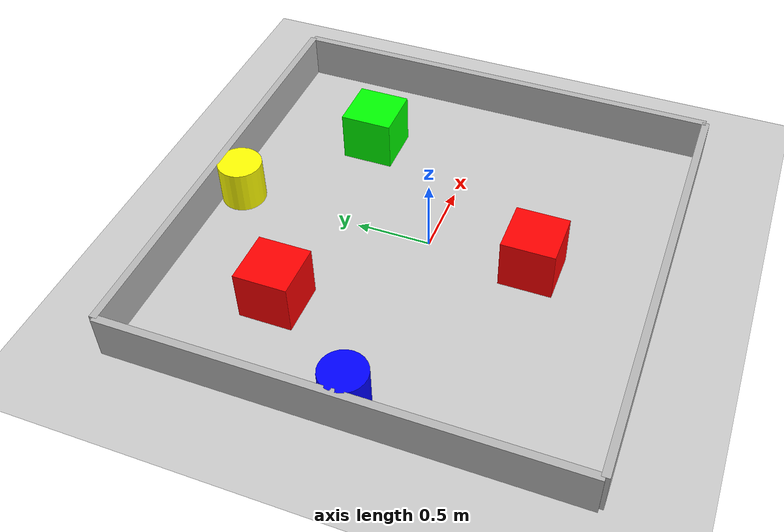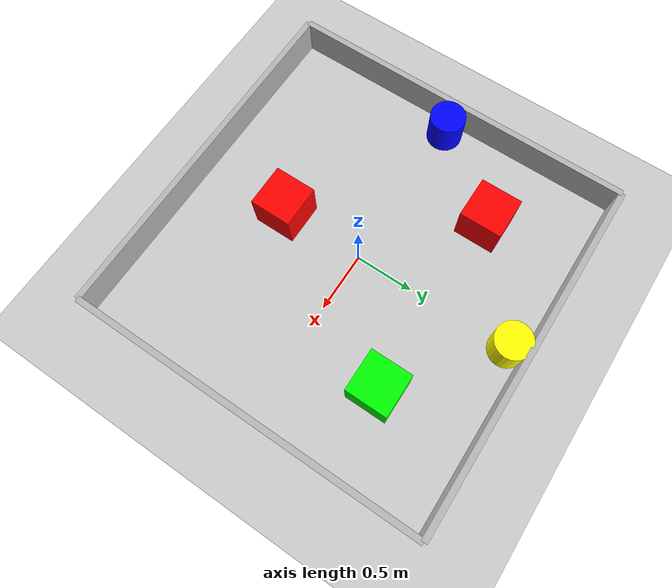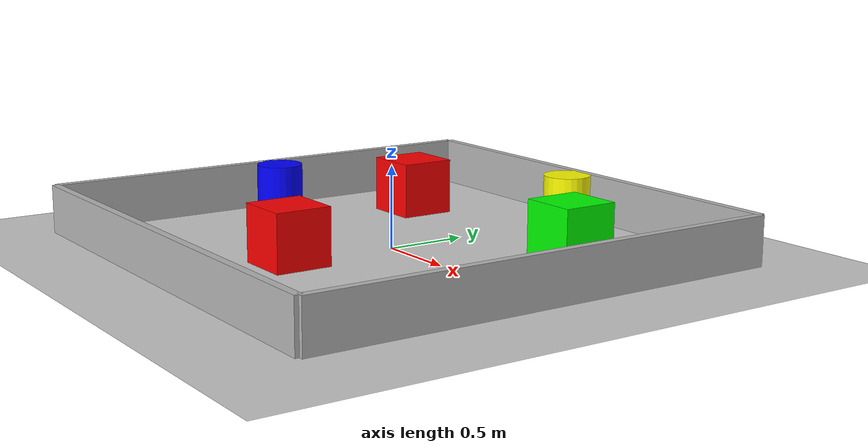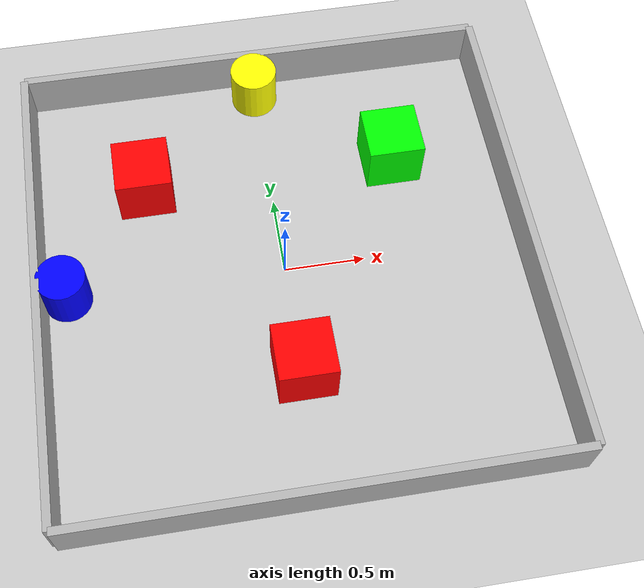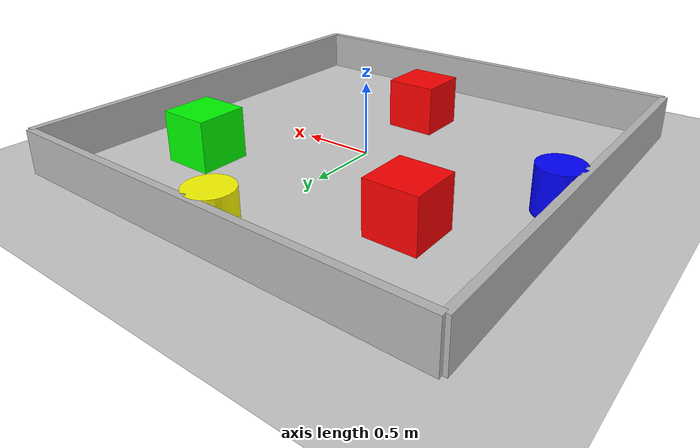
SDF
<?xml version="1.0" ?>
<sdf version="1.9">

  <world name="maze_world_2">

    <!-- buat lantai-->
    <physics name="1ms" type="ode">
      <max_step_size>0.001</max_step_size>
      <real_time_factor>1.0</real_time_factor>
    </physics>
    <plugin
      filename="gz-sim-physics-system"
      name="gz::sim::systems::Physics">
    </plugin>
    <plugin
      filename="gz-sim-user-commands-system"
      name="gz::sim::systems::UserCommands">
    </plugin>
    <plugin
      filename="gz-sim-scene-broadcaster-system"
      name="gz::sim::systems::SceneBroadcaster">
    </plugin>
    <plugin
      filename="gz-sim-contact-system"
      name="gz::sim::systems::Contact">
    </plugin>

    <light type="directional" name="sun">
      <cast_shadows>true</cast_shadows>
      <pose>0 0 10 0 0 0</pose>
      <diffuse>0.8 0.8 0.8 1</diffuse>
      <specular>0.2 0.2 0.2 1</specular>
      <attenuation>
        <range>1000</range>
        <constant>0.9</constant>
        <linear>0.01</linear>
        <quadratic>0.001</quadratic>
      </attenuation>
      <direction>-0.5 0.1 -0.9</direction>
    </light>

    <model name="ground_plane">
      <static>true</static>
      <link name="link">
        <collision name="collision">
          <geometry>
            <plane>
              <normal>0 0 1</normal>
              <size>100 100</size>
            </plane>
          </geometry>
        </collision>
        <visual name="visual">
          <geometry>
            <plane>
              <normal>0 0 1</normal>
              <size>100 100</size>
            </plane>
          </geometry>
          <material>
            <ambient>0.8 0.8 0.8 1</ambient>
            <diffuse>0.8 0.8 0.8 1</diffuse>
            <specular>0.8 0.8 0.8 1</specular>
          </material>
        </visual>
      </link>
    </model>

    <!-- WALLS : 3m x 3m AREA                              -->

    <!-- North Wall -->
    <model name="wall_north">
      <static>true</static>
      <pose>0 1.5 0.15 0 0 0</pose>

      <link name="link">
        <collision name="collision">
          <geometry>
            <box>
              <size>3.0 0.05 0.3</size>
            </box>
          </geometry>
        </collision>

        <visual name="visual">
          <geometry>
            <box>
              <size>3.0 0.05 0.3</size>
            </box>
          </geometry>
        </visual>
      </link>
    </model>

    <!-- South Wall -->
    <model name="wall_south">
      <static>true</static>
      <pose>0 -1.5 0.15 0 0 0</pose>

      <link name="link">
        <collision name="collision">
          <geometry>
            <box>
              <size>3.0 0.05 0.3</size>
            </box>
          </geometry>
        </collision>

        <visual name="visual">
          <geometry>
            <box>
              <size>3.0 0.05 0.3</size>
            </box>
          </geometry>
        </visual>
      </link>
    </model>

    <!-- East Wall -->
    <model name="wall_east">
      <static>true</static>
      <pose>1.5 0 0.15 0 0 0</pose>

      <link name="link">
        <collision name="collision">
          <geometry>
            <box>
              <size>0.05 3.0 0.3</size>
            </box>
          </geometry>
        </collision>

        <visual name="visual">
          <geometry>
            <box>
              <size>0.05 3.0 0.3</size>
            </box>
          </geometry>
        </visual>
      </link>
    </model>

    <!-- West Wall -->
    <model name="wall_west">
      <static>true</static>
      <pose>-1.5 0 0.15 0 0 0</pose>

      <link name="link">
        <collision name="collision">
          <geometry>
            <box>
              <size>0.05 3.0 0.3</size>
            </box>
          </geometry>
        </collision>

        <visual name="visual">
          <geometry>
            <box>
              <size>0.05 3.0 0.3</size>
            </box>
          </geometry>
        </visual>
      </link>
    </model>

    <!-- 1) YELLOW CYLINDER ATTACHED TO NORTH WALL         -->

    <model name="yellow_cylinder">
      <static>true</static>
      <pose>0 1.35 0.15 0 0 0</pose>

      <link name="link">

        <collision name="collision">
          <geometry>
            <cylinder>
              <radius>0.15</radius>
              <length>0.3</length>
            </cylinder>
          </geometry>
        </collision>

        <visual name="visual">
          <geometry>
            <cylinder>
              <radius>0.15</radius>
              <length>0.3</length>
            </cylinder>
          </geometry>

          <material>
            <ambient>1 1 0 1</ambient>
            <diffuse>1 1 0 1</diffuse>
          </material>
        </visual>

      </link>
    </model>

    <!-- 2) BLUE CYLINDER ATTACHED TO WEST WALL            -->

    <model name="blue_cylinder">
      <static>true</static>
      <pose>-1.35 0 0.15 0 0 0</pose>

      <link name="link">

        <collision name="collision">
          <geometry>
            <cylinder>
              <radius>0.15</radius>
              <length>0.3</length>
            </cylinder>
          </geometry>
        </collision>

        <visual name="visual">
          <geometry>
            <cylinder>
              <radius>0.15</radius>
              <length>0.3</length>
            </cylinder>
          </geometry>

          <material>
            <ambient>0 0 1 1</ambient>
            <diffuse>0 0 1 1</diffuse>
          </material>
        </visual>

      </link>
    </model>

    <!-- 3) RED BOX                                        -->

    <model name="red_box_1">
      <static>true</static>
      <pose>-0.8 0.7 0.175 0 0 0</pose>

      <link name="link">

        <collision name="collision">
          <geometry>
            <box>
              <size>0.35 0.35 0.35</size>
            </box>
          </geometry>
        </collision>

        <visual name="visual">
          <geometry>
            <box>
              <size>0.35 0.35 0.35</size>
            </box>
          </geometry>

          <material>
            <ambient>1 0 0 1</ambient>
            <diffuse>1 0 0 1</diffuse>
          </material>
        </visual>

      </link>
    </model>

    <!-- 4) GREEN BOX                                      -->

    <model name="green_box">
      <static>true</static>
      <pose>0.8 0.7 0.175 0 0 0</pose>

      <link name="link">

        <collision name="collision">
          <geometry>
            <box>
              <size>0.35 0.35 0.35</size>
            </box>
          </geometry>
        </collision>

        <visual name="visual">
          <geometry>
            <box>
              <size>0.35 0.35 0.35</size>
            </box>
          </geometry>

          <material>
            <ambient>0 1 0 1</ambient>
            <diffuse>0 1 0 1</diffuse>
          </material>
        </visual>

      </link>
    </model>

    <!-- 5) RED BOX                                        -->

    <model name="red_box_2">
      <static>true</static>
      <pose>0 -0.7 0.175 0 0 0</pose>

      <link name="link">

        <collision name="collision">
          <geometry>
            <box>
              <size>0.35 0.35 0.35</size>
            </box>
          </geometry>
        </collision>

        <visual name="visual">
          <geometry>
            <box>
              <size>0.35 0.35 0.35</size>
            </box>
          </geometry>

          <material>
            <ambient>1 0 0 1</ambient>
            <diffuse>1 0 0 1</diffuse>
          </material>
        </visual>

      </link>
    </model>

  </world>

</sdf>
